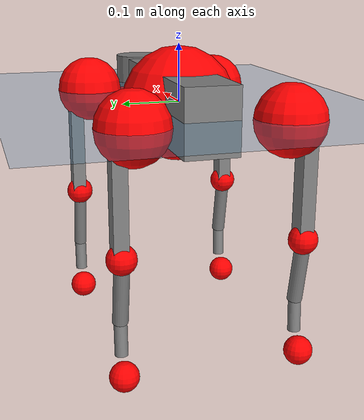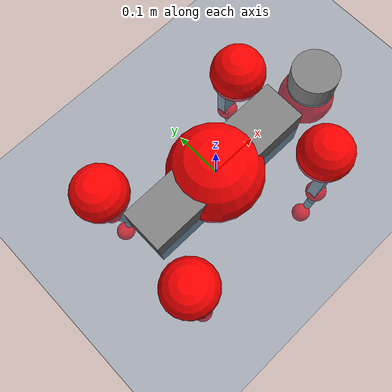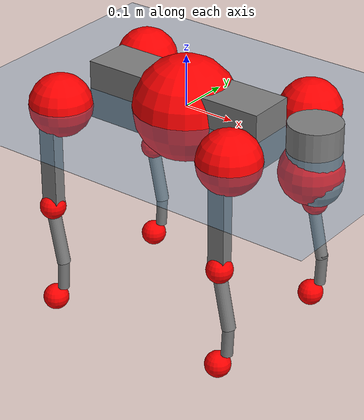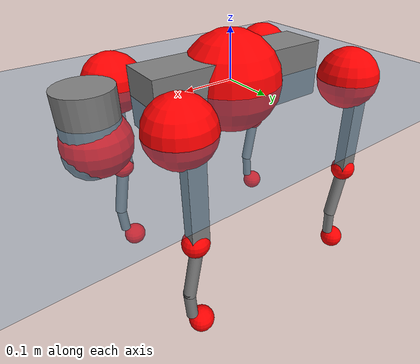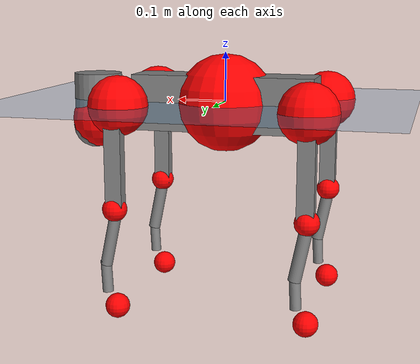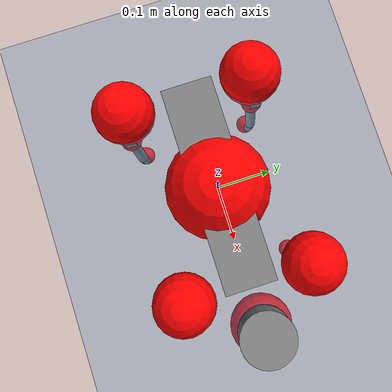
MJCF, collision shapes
<mujoco model="go2">
  <compiler angle="radian" assetdir="assets" balanceinertia="true" inertiafromgeom="false"/>

  <option timestep="0.005" density="1.2" viscosity="2e-05"/>

  <size nkey="1"/>

  <visual>
    <quality shadowsize="8192"/>
    <map shadowclip="0.5"/>
  </visual>

  <default>
    <default class="/">
      <geom contype="0" conaffinity="0" group="1" solref="-1000 -80"/>
      <site size="0.01 0.005 0.005" group="5"/>
      <general forcelimited="true" biastype="affine" gainprm="20" biasprm="0 -20 -0.5"/>
      <default class="go2">
        <joint armature="0.01" damping="0.01" frictionloss="0.2"/>
        <geom condim="1" margin="0.001"/>
        <default class="visual">
          <geom type="mesh" group="2"/>
        </default>
        <default class="collision">
          <geom group="3"/>
          <default class="foot">
            <geom size="0.022 0 0" condim="6" priority="1" friction="0.8 0.02 0.01" solimp="0.015 1 0.022"/>
          </default>
        </default>
        <default class="reward_collision_sphere">
          <geom group="5" rgba="1 0 0 1"/>
        </default>
      </default>
    </default>
  </default>

  <asset>
    <texture type="skybox" colorspace="auto" name="//unnamed_texture_0" builtin="gradient" rgb1="0.95 0.95 0.95" rgb2="0.95 0.95 0.95" width="100" height="600"/>
    <texture type="2d" colorspace="auto" name="texplane" builtin="checker" rgb1="0.345 0.575 0.748" rgb2="0.345 0.575 0.748" markrgb="1 1 1" width="512" height="512"/>
    <material name="MatPlane" class="/" texture="texplane" texuniform="true" texrepeat="2 2" specular="0.9"/>
    <material name="metal" class="/" rgba="0.9 0.95 0.95 1"/>
    <material name="black" class="/" rgba="0 0 0 1"/>
    <material name="white" class="/"/>
    <material name="gray" class="/" rgba="0.671705 0.692426 0.77427 1"/>
    <mesh name="base_0" class="/" file="base_0.obj"/>
    <mesh name="base_1" class="/" file="base_1.obj"/>
    <mesh name="base_2" class="/" file="base_2.obj"/>
    <mesh name="base_3" class="/" file="base_3.obj"/>
    <mesh name="base_4" class="/" file="base_4.obj"/>
    <mesh name="hip_0" class="/" file="hip_0.obj"/>
    <mesh name="hip_1" class="/" file="hip_1.obj"/>
    <mesh name="thigh_0" class="/" file="thigh_0.obj"/>
    <mesh name="thigh_1" class="/" file="thigh_1.obj"/>
    <mesh name="thigh_mirror_0" class="/" file="thigh_mirror_0.obj"/>
    <mesh name="thigh_mirror_1" class="/" file="thigh_mirror_1.obj"/>
    <mesh name="calf_0" class="/" file="calf_0.obj"/>
    <mesh name="calf_1" class="/" file="calf_1.obj"/>
    <mesh name="calf_mirror_0" class="/" file="calf_mirror_0.obj"/>
    <mesh name="calf_mirror_1" class="/" file="calf_mirror_1.obj"/>
    <mesh name="foot" class="/" file="foot.obj"/>
  </asset>

  <worldbody>
    <geom name="floor" class="/" size="100 100 0.125" type="plane" group="0" material="MatPlane"/>
    <light name="toplight_shadow" class="/" pos="0 0 5" dir="0.0990148 0.0990148 -0.990148" type="directional" ambient="0.04 0.04 0.04" diffuse="0.55 0.55 0.55" specular="0.12 0.12 0.12"/>
    <light name="toplight_fill" class="/" pos="0 0 5" dir="0.0990148 0.0990148 -0.990148" type="directional" castshadow="false" ambient="0.04 0.04 0.04" diffuse="0.3 0.3 0.3" specular="0.08 0.08 0.08"/>
    <body name="trunk" childclass="go2" pos="-0.000869861 0.000318877 -0.00271189" quat="1 8.32087e-05 -0.000487984 -0.000129406">
      <inertial pos="0.0175435 -0.00288496 -0.00369382" quat="-0.00332532 0.712636 -0.000627292 0.701526" mass="6.84319" diaginertia="0.0986907 0.13842 0.0190342"/>
      <joint name="//unnamed_joint_0" type="free" armature="0" damping="0" frictionloss="0"/>
      <geom name="//unnamed_geom_1" class="visual" material="black" mesh="base_0"/>
      <geom name="//unnamed_geom_2" class="visual" material="black" mesh="base_1"/>
      <geom name="//unnamed_geom_3" class="visual" material="black" mesh="base_2"/>
      <geom name="//unnamed_geom_4" class="visual" material="white" mesh="base_3"/>
      <geom name="//unnamed_geom_5" class="visual" material="gray" mesh="base_4"/>
      <geom name="trunk_1" class="collision" size="0.186809 0.0464292 0.0566089" type="box"/>
      <geom name="trunk_2" class="collision" size="0.0496569 0.0446912" pos="0.277452 0 0.00942275" type="cylinder"/>
      <geom name="trunk_3" class="collision" size="0.0466775" pos="0.28524 0 -0.0565365"/>
      <geom name="//unnamed_geom_9" class="reward_collision_sphere" size="0.0993139"/>
      <geom name="//unnamed_geom_10" class="reward_collision_sphere" size="0.0595883" pos="0.272584 0 -0.0424024"/>
      <site name="imu" pos="-0.0352417 0.005342 0.0533413" size="0.00993139"/>
      <camera name="track" pos="0 -2.12725 0" quat="0.707107 0.707107 0 0" mode="trackcom"/>
      <camera name="ego_camera" pos="0.303737 0 0.0424024" quat="-0.5 -0.5 0.5 0.5"/>
      <body name="FL_hip" pos="0.186481 0.0494255 0.00262951" quat="1 0.000130162 0.000476924 -0.000595487">
        <inertial pos="-0.00261332 0.000687693 0.000582322" quat="0.4895 0.495234 0.509607 0.505405" mass="0.642916" diaginertia="0.000749275 0.000806027 0.000358535"/>
        <joint name="FL_hip_joint" pos="0 0 0" axis="0.999901 0.013907 -0.00201518" stiffness="0.00464558" range="-1.03232 1.09386" armature="0.0111092" damping="0.0075428" frictionloss="0.207814"/>
        <geom name="//unnamed_geom_11" class="visual" material="metal" mesh="hip_0"/>
        <geom name="//unnamed_geom_12" class="visual" material="gray" mesh="hip_1"/>
        <geom name="//unnamed_geom_13" class="collision" size="0.0456844 0.0198628" pos="0 0.0850901 0" quat="0.707107 0.707107 0 0" type="cylinder"/>
        <geom name="//unnamed_geom_14" class="reward_collision_sphere" size="0.0595883" pos="0 0.0744539 0"/>
        <body name="FL_thigh" pos="-0.000766417 0.103047 0.000697347" quat="1 0.000541259 0.000509225 -0.000208054">
          <inertial pos="-0.00243894 -0.0232639 -0.0281521" quat="0.829372 0.084792 -0.0200528 0.551861" mass="1.15491" diaginertia="0.00500005 0.00790837 0.00065585"/>
          <joint name="FL_thigh_joint" pos="0 0 0" axis="0.000370675 1 -0.000612796" range="-1.56337 3.48195" armature="0.00947807" damping="0.00795908" frictionloss="0.17195"/>
          <geom name="//unnamed_geom_15" class="visual" material="metal" mesh="thigh_0"/>
          <geom name="//unnamed_geom_16" class="visual" material="gray" mesh="thigh_1"/>
          <geom name="//unnamed_geom_17" class="collision" size="0.105769 0.012166 0.0168834" pos="0 0 -0.100352" quat="0.707107 0 0.707107 0" type="box"/>
          <body name="FL_calf" pos="0.00263077 -0.00239906 -0.20315" quat="0.999999 0.000342 -0.00130315 0.000678548">
            <inertial pos="0.00654891 -0.00101596 -0.132594" quat="0.711005 0.00248116 -0.0051824 0.703163" mass="0.230334" diaginertia="0.00126762 0.00198171 3.8725e-05"/>
            <joint name="FL_calf_joint" pos="0 0 0" axis="0.0143689 0.999896 -0.000976135" range="-2.77738 -0.815771" armature="0.010901" damping="0" frictionloss="0.223919"/>
            <geom name="//unnamed_geom_18" class="visual" material="gray" mesh="calf_0"/>
            <geom name="//unnamed_geom_19" class="visual" material="black" mesh="calf_1"/>
            <geom name="FL_calf0" class="collision" size="0.0119177 0.0595883" pos="0.00778812 0 -0.0565365" quat="0.994493 0 -0.104807 0" type="cylinder"/>
            <geom name="//unnamed_geom_21" class="collision" size="0.0109245 0.032277" pos="0.0194703 0 -0.139457" quat="0.999688 0 0.0249974 0" type="cylinder"/>
            <geom name="//unnamed_geom_22" class="visual" pos="0 0 -0.200705" quat="1 0 0 0" material="black" mesh="foot"/>
            <geom name="FL_foot" class="foot" size="0.016478" pos="-0.00194703 0 -0.200705"/>
            <geom name="//unnamed_geom_24" class="reward_collision_sphere" size="0.0248285"/>
            <geom name="//unnamed_geom_25" class="reward_collision_sphere" size="0.0248285" pos="-0.00194703 0 -0.200705"/>
            <site name="FL_foot" class="foot" pos="-0.00194703 0 -0.200705" size="0.00993139"/>
          </body>
        </body>
      </body>
      <body name="FR_hip" pos="0.186305 -0.0493503 0.000473257" quat="1 3.94809e-05 7.01473e-05 8.97315e-05">
        <inertial pos="-0.00242733 -0.00108403 -0.00110855" quat="0.497984 0.50342 0.500828 0.497745" mass="0.687655" diaginertia="0.000782458 0.000860162 0.000367121"/>
        <joint name="FR_hip_joint" pos="0 0 0" axis="0.999988 -0.00405429 0.0026194" stiffness="0.00316552" range="-1.10245 1.02923" armature="0.00862294" damping="0.00901353" frictionloss="0.172174"/>
        <geom name="//unnamed_geom_26" class="visual" pos="0 1.05716e-09 4.5344e-08" quat="4.63268e-05 1 0 0" material="metal" mesh="hip_0"/>
        <geom name="//unnamed_geom_27" class="visual" pos="0 1.71379e-09 -1.12153e-07" quat="4.63268e-05 1 0 0" material="gray" mesh="hip_1"/>
        <geom name="//unnamed_geom_28" class="collision" size="0.0456844 0.0198628" pos="0 -0.0850901 0" quat="0.707107 0.707107 0 0" type="cylinder"/>
        <geom name="//unnamed_geom_29" class="reward_collision_sphere" size="0.0595883" pos="0 -0.0744539 0"/>
        <body name="FR_thigh" pos="-0.00114484 -0.0988685 -0.00175806" quat="1 0.000313234 -0.000169331 -0.000138344">
          <inertial pos="-0.00368446 0.0228123 -0.0297925" quat="0.552817 -0.0171627 0.0714174 0.83006" mass="1.05563" diaginertia="0.00496303 0.00791565 0.000642888"/>
          <joint name="FR_thigh_joint" pos="0 0 0" axis="-0.00647799 -0.999932 0.00965239" range="-3.44839 1.62193" armature="0.0100115" damping="0" frictionloss="0.214906"/>
          <geom name="//unnamed_geom_30" class="visual" material="metal" mesh="thigh_mirror_0"/>
          <geom name="//unnamed_geom_31" class="visual" material="gray" mesh="thigh_mirror_1"/>
          <geom name="//unnamed_geom_32" class="collision" size="0.105769 0.012166 0.0168834" pos="0 0 -0.100352" quat="0.707107 0 0.707107 0" type="box"/>
          <body name="FR_calf" pos="0.00241747 -0.00233675 -0.199342" quat="1 9.37922e-05 0.000110128 0.000101273">
            <inertial pos="0.0057265 0.000999407 -0.13083" quat="0.704208 -0.00403217 0.0130266 0.709862" mass="0.240276" diaginertia="0.00127152 0.00192839 3.94165e-05"/>
            <joint name="FR_calf_joint" pos="0 0 0" axis="0.00518726 -0.999966 0.00643432" range="0.789689 2.77422" armature="0.00975287" damping="0.00421447" frictionloss="0.175971"/>
            <geom name="//unnamed_geom_33" class="visual" material="gray" mesh="calf_mirror_0"/>
            <geom name="//unnamed_geom_34" class="visual" material="black" mesh="calf_mirror_1"/>
            <geom name="FR_calf0" class="collision" size="0.0129108 0.0595883" pos="0.00973515 0 -0.0565365" quat="0.995004 0 -0.0998334 0" type="cylinder"/>
            <geom name="//unnamed_geom_36" class="collision" size="0.0109245 0.032277" pos="0.0194703 0 -0.139457" quat="0.999688 0 0.0249974 0" type="cylinder"/>
            <geom name="//unnamed_geom_37" class="visual" pos="0 0 -0.200705" quat="1 0 0 0" material="black" mesh="foot"/>
            <geom name="FR_foot" class="foot" size="0.0212939" pos="-0.00194703 0 -0.200705"/>
            <geom name="//unnamed_geom_39" class="reward_collision_sphere" size="0.0248285"/>
            <geom name="//unnamed_geom_40" class="reward_collision_sphere" size="0.0248285" pos="-0.00194703 0 -0.200705"/>
            <site name="FR_foot" class="foot" pos="-0.00194703 0 -0.200705" size="0.00993139"/>
          </body>
        </body>
      </body>
      <body name="RL_hip" pos="-0.190364 0.0513641 0.000237422" quat="1 0.000254703 3.04821e-08 0.000281853">
        <inertial pos="0.00667827 0.00491608 -0.000829648" quat="0.500999 0.508728 0.494176 0.49597" mass="0.663596" diaginertia="0.000740356 0.000805234 0.0003326"/>
        <joint name="RL_hip_joint" pos="0 0 0" axis="-0.999995 0.000939679 0.00309805" range="-1.03156 1.01336" armature="0.00848934" damping="0" frictionloss="0.199208"/>
        <geom name="//unnamed_geom_41" class="visual" pos="-2.7215e-10 0 -5.33477e-08" quat="4.63268e-05 0 1 0" material="metal" mesh="hip_0"/>
        <geom name="//unnamed_geom_42" class="visual" pos="-4.41188e-10 0 -4.73118e-08" quat="4.63268e-05 0 1 0" material="gray" mesh="hip_1"/>
        <geom name="//unnamed_geom_43" class="collision" size="0.0456844 0.0198628" pos="0 0.0850901 0" quat="0.707107 0.707107 0 0" type="cylinder"/>
        <geom name="//unnamed_geom_44" class="reward_collision_sphere" size="0.0595883" pos="0 0.0744539 0"/>
        <body name="RL_thigh" pos="-0.00250179 0.0991668 -0.000438918" quat="1 4.08925e-06 1.24163e-05 1.75608e-05">
          <inertial pos="-0.0038772 -0.0206412 -0.0298542" quat="0.830579 0.0849152 -0.0232917 0.549895" mass="1.12562" diaginertia="0.00519433 0.00770188 0.000653569"/>
          <joint name="RL_thigh_joint" pos="0 0 0" axis="-0.00497384 0.999965 -0.00669052" stiffness="0.0141942" range="-0.514812 4.56193" armature="0.00898271" damping="0" frictionloss="0.205966"/>
          <geom name="//unnamed_geom_45" class="visual" material="metal" mesh="thigh_0"/>
          <geom name="//unnamed_geom_46" class="visual" material="gray" mesh="thigh_1"/>
          <geom name="//unnamed_geom_47" class="collision" size="0.105769 0.012166 0.0168834" pos="0 0 -0.100352" quat="0.707107 0 0.707107 0" type="box"/>
          <body name="RL_calf" pos="-0.00229183 -0.00241554 -0.201981" quat="1 0.000160242 -0.000240587 -0.000293422">
            <inertial pos="0.00624542 -0.000509756 -0.132785" quat="0.710622 0.00823074 0.000784151 0.703526" mass="0.237793" diaginertia="0.00129902 0.00197397 3.86276e-05"/>
            <joint name="RL_calf_joint" pos="0 0 0" axis="-0.000223729 0.999994 0.00350516" range="-2.71896 -0.836225" armature="0.00864506" damping="0.00522881" frictionloss="0.224724"/>
            <geom name="//unnamed_geom_48" class="visual" material="gray" mesh="calf_0"/>
            <geom name="//unnamed_geom_49" class="visual" material="black" mesh="calf_1"/>
            <geom name="RL_calf0" class="collision" size="0.0129108 0.0595883" pos="0.00973515 0 -0.0565365" quat="0.995004 0 -0.0998334 0" type="cylinder"/>
            <geom name="//unnamed_geom_51" class="collision" size="0.0109245 0.032277" pos="0.0194703 0 -0.139457" quat="0.999688 0 0.0249974 0" type="cylinder"/>
            <geom name="//unnamed_geom_52" class="visual" pos="0 0 -0.200705" quat="1 0 0 0" material="black" mesh="foot"/>
            <geom name="RL_foot" class="foot" size="0.0186291" pos="-0.00194703 0 -0.200705"/>
            <geom name="//unnamed_geom_54" class="reward_collision_sphere" size="0.0248285"/>
            <geom name="//unnamed_geom_55" class="reward_collision_sphere" size="0.0248285" pos="-0.00194703 0 -0.200705"/>
            <site name="RL_foot" class="foot" pos="-0.00194703 0 -0.200705" size="0.00993139"/>
          </body>
        </body>
      </body>
      <body name="RR_hip" pos="-0.189374 -0.0526766 -0.00155449" quat="0.999999 0.00109136 0.000768883 0.00044471">
        <inertial pos="0.00271847 -0.00252789 0.00263356" quat="0.498975 0.497356 0.498086 0.50554" mass="0.650013" diaginertia="0.000758294 0.000790458 0.000338252"/>
        <joint name="RR_hip_joint" pos="0 0 0" axis="-1 -2.32775e-05 -4.31535e-05" range="-1.10091 1.08847" armature="0.00985472" damping="0" frictionloss="0.199057"/>
        <geom name="//unnamed_geom_56" class="visual" pos="2.7527e-10 1.05716e-09 -9.86917e-08" quat="2.14617e-09 4.63268e-05 4.63268e-05 -1" material="metal" mesh="hip_0"/>
        <geom name="//unnamed_geom_57" class="visual" pos="4.33472e-10 1.71379e-09 6.48411e-08" quat="2.14617e-09 4.63268e-05 4.63268e-05 -1" material="gray" mesh="hip_1"/>
        <geom name="//unnamed_geom_58" class="collision" size="0.0456844 0.0198628" pos="0 -0.0850901 0" quat="0.707107 0.707107 0 0" type="cylinder"/>
        <geom name="//unnamed_geom_59" class="reward_collision_sphere" size="0.0595883" pos="0 -0.0744539 0"/>
        <body name="RR_thigh" pos="-0.00138333 -0.103928 0.0016389" quat="1 0.000275233 -0.000112719 9.58284e-05">
          <inertial pos="-0.000793899 0.0244267 -0.0317783" quat="0.551306 -0.0203795 0.0849603 0.829715" mass="1.07162" diaginertia="0.00490716 0.00777479 0.000632747"/>
          <joint name="RR_thigh_joint" pos="0 0 0" axis="-0.0115243 -0.999823 -0.0148625" range="-4.54138 0.522094" armature="0.00936015" damping="0.00872858" frictionloss="0.201563"/>
          <geom name="//unnamed_geom_60" class="visual" material="metal" mesh="thigh_mirror_0"/>
          <geom name="//unnamed_geom_61" class="visual" material="gray" mesh="thigh_mirror_1"/>
          <geom name="//unnamed_geom_62" class="collision" size="0.105769 0.012166 0.0168834" pos="0 0 -0.100352" quat="0.707107 0 0.707107 0" type="box"/>
          <body name="RR_calf" pos="-0.00216624 -0.000228591 -0.201305" quat="1 -0.000508968 0.000656733 0.000166621">
            <inertial pos="0.00479295 0.000512274 -0.133612" quat="0.704868 -0.00992957 -0.0111149 0.709181" mass="0.231164" diaginertia="0.00125507 0.00204303 3.90915e-05"/>
            <joint name="RR_calf_joint" pos="0 0 0" axis="-0.0014673 -0.999999 0.000412764" stiffness="0.0117834" range="0.852959 2.72208" armature="0.00880807" damping="0.0166824" frictionloss="0.197526"/>
            <geom name="//unnamed_geom_63" class="visual" material="gray" mesh="calf_mirror_0"/>
            <geom name="//unnamed_geom_64" class="visual" material="black" mesh="calf_mirror_1"/>
            <geom name="RR_calf0" class="collision" size="0.0129108 0.0595883" pos="0.00973515 0 -0.0565365" quat="0.995004 0 -0.0998334 0" type="cylinder"/>
            <geom name="//unnamed_geom_66" class="collision" size="0.0109245 0.032277" pos="0.0194703 0 -0.139457" quat="0.999688 0 0.0249974 0" type="cylinder"/>
            <geom name="//unnamed_geom_67" class="visual" pos="0 0 -0.200705" quat="1 0 0 0" material="black" mesh="foot"/>
            <geom name="RR_foot" class="foot" size="0.0198435" pos="-0.00194703 0 -0.200705"/>
            <geom name="//unnamed_geom_69" class="reward_collision_sphere" size="0.0248285"/>
            <geom name="//unnamed_geom_70" class="reward_collision_sphere" size="0.0248285" pos="-0.00194703 0 -0.200705"/>
            <site name="RR_foot" class="foot" pos="-0.00194703 0 -0.200705" size="0.00993139"/>
          </body>
        </body>
      </body>
    </body>
  </worldbody>

  <contact>
    <pair class="/" geom1="floor" geom2="FL_foot" name="//unnamed_contact_0"/>
    <pair class="/" geom1="floor" geom2="FR_foot" name="//unnamed_contact_1"/>
    <pair class="/" geom1="floor" geom2="RL_foot" name="//unnamed_contact_2"/>
    <pair class="/" geom1="floor" geom2="RR_foot" name="//unnamed_contact_3"/>
  </contact>

  <actuator>
    <general name="FL_hip" class="/" joint="FL_hip_joint" forcerange="-24.3958 24.3958" gainprm="19.6639" biasprm="0 -19.6639 -0.496679"/>
    <general name="FL_thigh" class="/" joint="FL_thigh_joint" forcerange="-21.4889 21.4889" gainprm="19.6639" biasprm="0 -19.6639 -0.496679"/>
    <general name="FL_calf" class="/" joint="FL_calf_joint" forcerange="-45.5072 45.5072" gainprm="19.6639" biasprm="0 -19.6639 -0.496679"/>
    <general name="FR_hip" class="/" joint="FR_hip_joint" forcerange="-21.2963 21.2963" gainprm="19.6639" biasprm="0 -19.6639 -0.496679"/>
    <general name="FR_thigh" class="/" joint="FR_thigh_joint" forcerange="-24.9531 24.9531" gainprm="19.6639" biasprm="0 -19.6639 -0.496679"/>
    <general name="FR_calf" class="/" joint="FR_calf_joint" forcerange="-40.2388 40.2388" gainprm="19.6639" biasprm="0 -19.6639 -0.496679"/>
    <general name="RL_hip" class="/" joint="RL_hip_joint" forcerange="-23.5066 23.5066" gainprm="19.6639" biasprm="0 -19.6639 -0.496679"/>
    <general name="RL_thigh" class="/" joint="RL_thigh_joint" forcerange="-21.2377 21.2377" gainprm="19.6639" biasprm="0 -19.6639 -0.496679"/>
    <general name="RL_calf" class="/" joint="RL_calf_joint" forcerange="-45.9137 45.9137" gainprm="19.6639" biasprm="0 -19.6639 -0.496679"/>
    <general name="RR_hip" class="/" joint="RR_hip_joint" forcerange="-22.995 22.995" gainprm="19.6639" biasprm="0 -19.6639 -0.496679"/>
    <general name="RR_thigh" class="/" joint="RR_thigh_joint" forcerange="-21.4705 21.4705" gainprm="19.6639" biasprm="0 -19.6639 -0.496679"/>
    <general name="RR_calf" class="/" joint="RR_calf_joint" forcerange="-49.8278 49.8278" gainprm="19.6639" biasprm="0 -19.6639 -0.496679"/>
  </actuator>

  <sensor>
    <gyro site="imu" name="imu_angular_velocity"/>
    <velocimeter site="imu" name="imu_linear_velocity"/>
    <framelinvel objtype="site" objname="FL_foot" name="FL_foot_global_linear_velocity"/>
    <framelinvel objtype="site" objname="FR_foot" name="FR_foot_global_linear_velocity"/>
    <framelinvel objtype="site" objname="RL_foot" name="RL_foot_global_linear_velocity"/>
    <framelinvel objtype="site" objname="RR_foot" name="RR_foot_global_linear_velocity"/>
  </sensor>

  <keyframe>
    <key name="home" qpos="0 0 0.325 1 0 0 0 0.1 0.8 -1.5 -0.1 -0.8 1.5 -0.1 0.8 -1.5 0.1 -0.8 1.5"/>
  </keyframe>
</mujoco>
